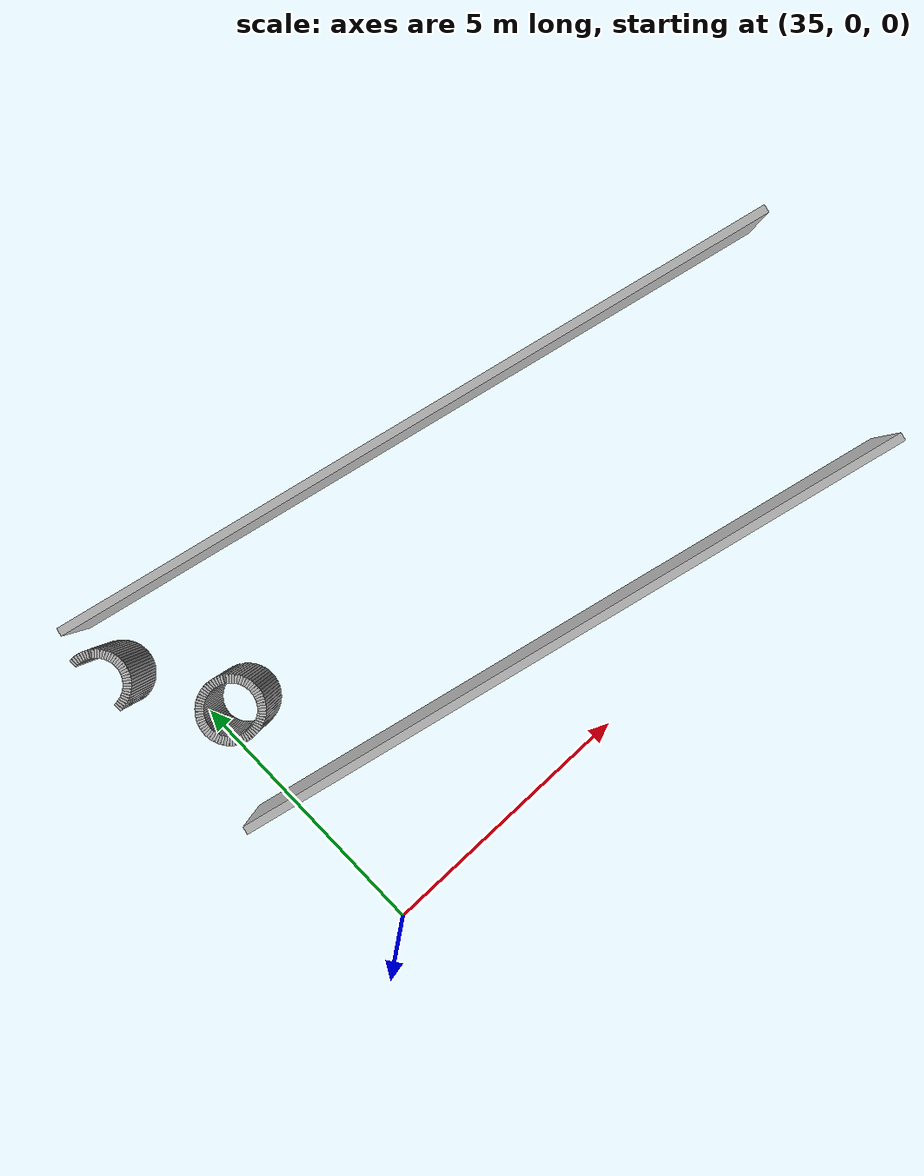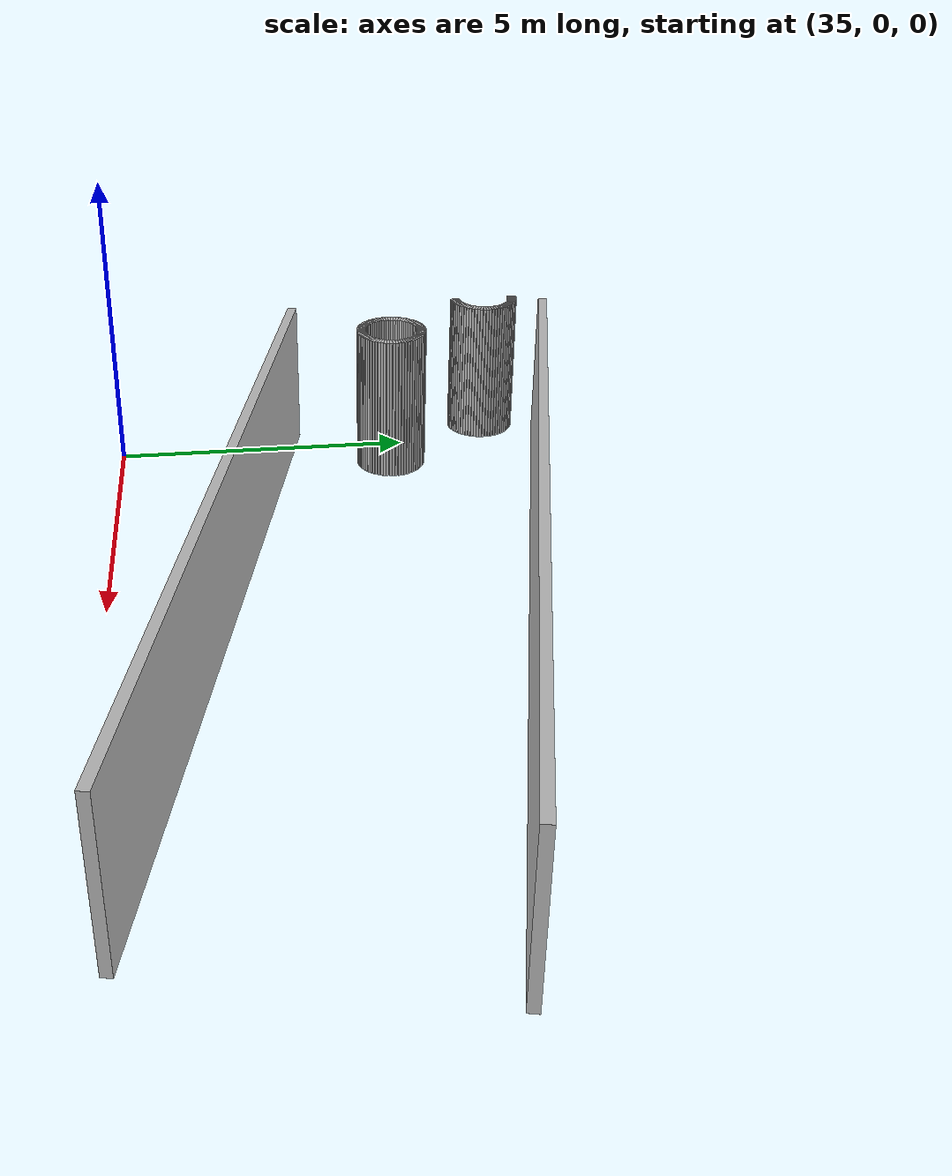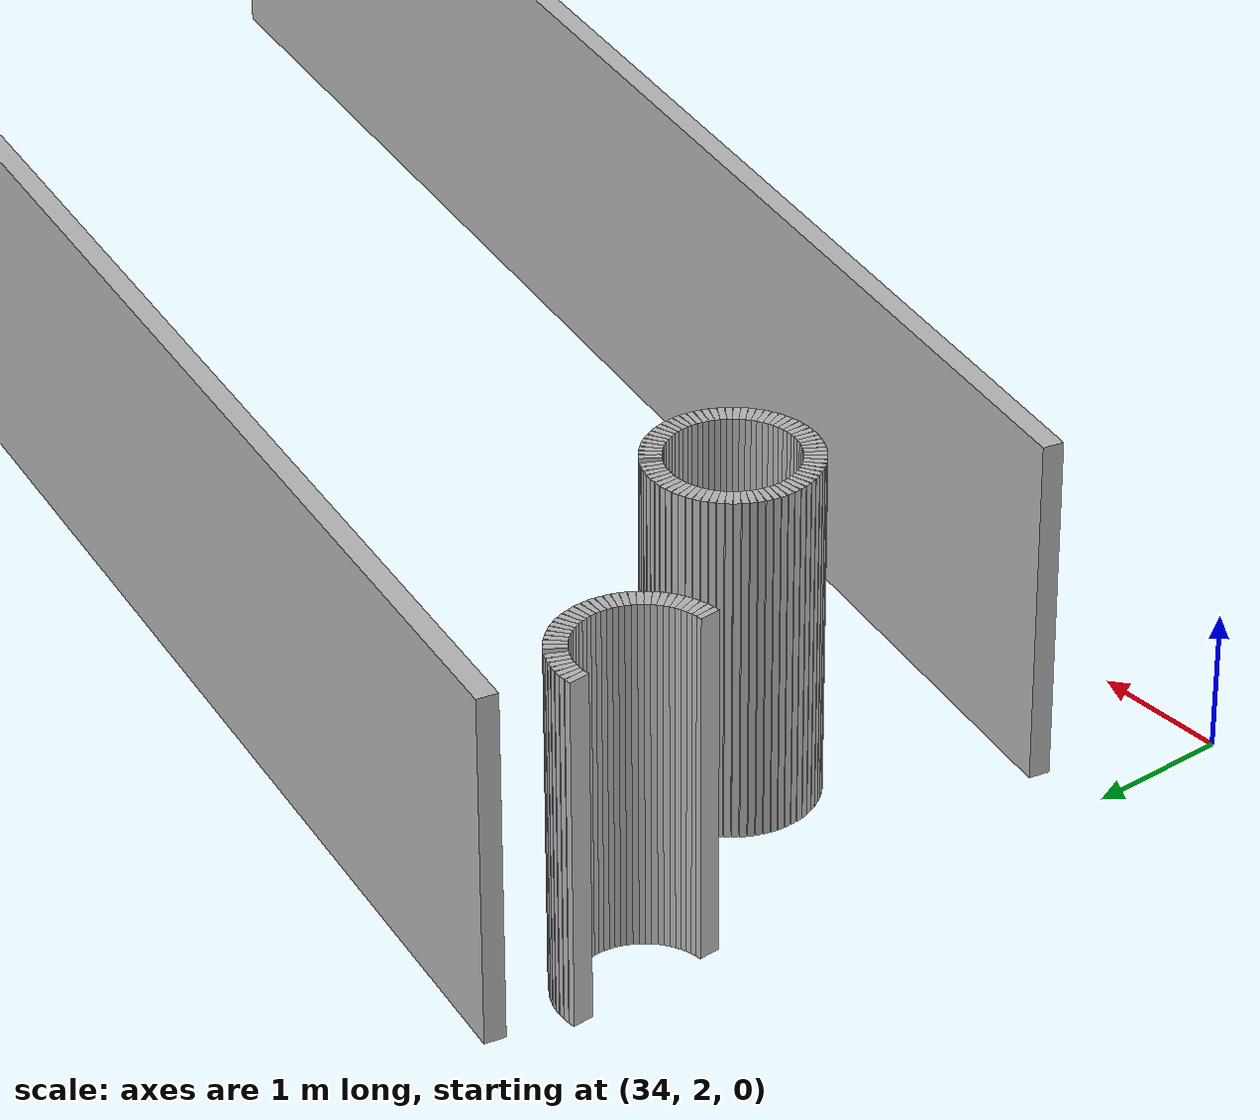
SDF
<sdf version="1.6">
 <model name="sps_2105">
  <static>1</static>
  <allow_auto_disable>0</allow_auto_disable>
  <link name="Wall360">
   <collision name="collision"><geometry><box><size>12.6978 0.15 2.5</size></box></geometry></collision>
   <visual name="visual">
    <geometry><box><size>12.6978 0.15 2.5</size></box></geometry>
    <transparency>0.0</transparency>
   </visual>
   <pose>40.6731 1.7684 1.25 0 -0 2.9273</pose>
  </link>
  <link name="Wall540">
   <collision name="collision"><geometry><box><size>13.6549 0.15 2.5</size></box></geometry></collision>
   <visual name="visual">
    <geometry><box><size>13.6549 0.15 2.5</size></box></geometry>
    <transparency>0.0</transparency>
   </visual>
   <pose>41.1407 6.16955 1.25 0 -0 2.9273</pose>
  </link>
  <link name="Wall907">
   <collision name="collision"><geometry><box><size>0.0453637 0.15 2.5</size></box></geometry></collision>
   <visual name="visual">
    <geometry><box><size>0.0453637 0.15 2.5</size></box></geometry>
    <transparency>0.0</transparency>
   </visual>
   <pose>35.9802 5.15571 1.25 0 0 -0.653727</pose>
  </link>
  <link name="Wall908">
   <collision name="collision"><geometry><box><size>0.0453148 0.15 2.5</size></box></geometry></collision>
   <visual name="visual">
    <geometry><box><size>0.0453148 0.15 2.5</size></box></geometry>
    <transparency>0.0</transparency>
   </visual>
   <pose>36.0149 5.1266 1.25 0 0 -0.742526</pose>
  </link>
  <link name="Wall909">
   <collision name="collision"><geometry><box><size>0.0454498 0.15 2.5</size></box></geometry></collision>
   <visual name="visual">
    <geometry><box><size>0.0454498 0.15 2.5</size></box></geometry>
    <transparency>0.0</transparency>
   </visual>
   <pose>36.047 5.0945 1.25 0 0 -0.830994</pose>
  </link>
  <link name="Wall910">
   <collision name="collision"><geometry><box><size>0.0453637 0.15 2.5</size></box></geometry></collision>
   <visual name="visual">
    <geometry><box><size>0.0453637 0.15 2.5</size></box></geometry>
    <transparency>0.0</transparency>
   </visual>
   <pose>36.0761 5.05971 1.25 0 0 -0.91707</pose>
  </link>
  <link name="Wall911">
   <collision name="collision"><geometry><box><size>0.045342 0.15 2.5</size></box></geometry></collision>
   <visual name="visual">
    <geometry><box><size>0.045342 0.15 2.5</size></box></geometry>
    <transparency>0.0</transparency>
   </visual>
   <pose>36.1021 5.0226 1.25 0 0 -1.00221</pose>
  </link>
  <link name="Wall912">
   <collision name="collision"><geometry><box><size>0.0453724 0.15 2.5</size></box></geometry></collision>
   <visual name="visual">
    <geometry><box><size>0.0453724 0.15 2.5</size></box></geometry>
    <transparency>0.0</transparency>
   </visual>
   <pose>36.1248 4.98338 1.25 0 0 -1.0897</pose>
  </link>
  <link name="Wall913">
   <collision name="collision"><geometry><box><size>0.0454525 0.15 2.5</size></box></geometry></collision>
   <visual name="visual">
    <geometry><box><size>0.0454525 0.15 2.5</size></box></geometry>
    <transparency>0.0</transparency>
   </visual>
   <pose>36.144 4.94227 1.25 0 0 -1.17807</pose>
  </link>
  <link name="Wall914">
   <collision name="collision"><geometry><box><size>0.0453057 0.15 2.5</size></box></geometry></collision>
   <visual name="visual">
    <geometry><box><size>0.0453057 0.15 2.5</size></box></geometry>
    <transparency>0.0</transparency>
   </visual>
   <pose>36.1595 4.89967 1.25 0 0 -1.26566</pose>
  </link>
  <link name="Wall915">
   <collision name="collision"><geometry><box><size>0.0452557 0.15 2.5</size></box></geometry></collision>
   <visual name="visual">
    <geometry><box><size>0.0452557 0.15 2.5</size></box></geometry>
    <transparency>0.0</transparency>
   </visual>
   <pose>36.1712 4.85597 1.25 0 0 -1.3533</pose>
  </link>
  <link name="Wall916">
   <collision name="collision"><geometry><box><size>0.0453551 0.15 2.5</size></box></geometry></collision>
   <visual name="visual">
    <geometry><box><size>0.0453551 0.15 2.5</size></box></geometry>
    <transparency>0.0</transparency>
   </visual>
   <pose>36.1789 4.81139 1.25 0 0 -1.4426</pose>
  </link>
  <link name="Wall917">
   <collision name="collision"><geometry><box><size>0.0454548 0.15 2.5</size></box></geometry></collision>
   <visual name="visual">
    <geometry><box><size>0.0454548 0.15 2.5</size></box></geometry>
    <transparency>0.0</transparency>
   </visual>
   <pose>36.1829 4.76619 1.25 0 0 -1.52647</pose>
  </link>
  <link name="Wall918">
   <collision name="collision"><geometry><box><size>0.0454548 0.15 2.5</size></box></geometry></collision>
   <visual name="visual">
    <geometry><box><size>0.0454548 0.15 2.5</size></box></geometry>
    <transparency>0.0</transparency>
   </visual>
   <pose>36.1829 4.72078 1.25 0 0 -1.61512</pose>
  </link>
  <link name="Wall919">
   <collision name="collision"><geometry><box><size>0.0451735 0.15 2.5</size></box></geometry></collision>
   <visual name="visual">
    <geometry><box><size>0.0451735 0.15 2.5</size></box></geometry>
    <transparency>0.0</transparency>
   </visual>
   <pose>36.1789 4.67567 1.25 0 0 -1.69951</pose>
  </link>
  <link name="Wall920">
   <collision name="collision"><geometry><box><size>0.0454876 0.15 2.5</size></box></geometry></collision>
   <visual name="visual">
    <geometry><box><size>0.0454876 0.15 2.5</size></box></geometry>
    <transparency>0.0</transparency>
   </visual>
   <pose>36.171 4.63109 1.25 0 0 -1.79267</pose>
  </link>
  <link name="Wall921">
   <collision name="collision"><geometry><box><size>0.0453057 0.15 2.5</size></box></geometry></collision>
   <visual name="visual">
    <geometry><box><size>0.0453057 0.15 2.5</size></box></geometry>
    <transparency>0.0</transparency>
   </visual>
   <pose>36.1592 4.58729 1.25 0 0 -1.87593</pose>
  </link>
  <link name="Wall922">
   <collision name="collision"><geometry><box><size>0.0454525 0.15 2.5</size></box></geometry></collision>
   <visual name="visual">
    <geometry><box><size>0.0454525 0.15 2.5</size></box></geometry>
    <transparency>0.0</transparency>
   </visual>
   <pose>36.1437 4.54469 1.25 0 0 -1.96352</pose>
  </link>
  <link name="Wall923">
   <collision name="collision"><geometry><box><size>0.0453724 0.15 2.5</size></box></geometry></collision>
   <visual name="visual">
    <geometry><box><size>0.0453724 0.15 2.5</size></box></geometry>
    <transparency>0.0</transparency>
   </visual>
   <pose>36.1245 4.50358 1.25 0 0 -2.05189</pose>
  </link>
  <link name="Wall924">
   <collision name="collision"><geometry><box><size>0.0453092 0.15 2.5</size></box></geometry></collision>
   <visual name="visual">
    <geometry><box><size>0.0453092 0.15 2.5</size></box></geometry>
    <transparency>0.0</transparency>
   </visual>
   <pose>36.1019 4.46437 1.25 0 0 -2.13825</pose>
  </link>
  <link name="Wall925">
   <collision name="collision"><geometry><box><size>0.0453524 0.15 2.5</size></box></geometry></collision>
   <visual name="visual">
    <geometry><box><size>0.0453524 0.15 2.5</size></box></geometry>
    <transparency>0.0</transparency>
   </visual>
   <pose>36.0759 4.42729 1.25 0 0 -2.22641</pose>
  </link>
  <link name="Wall926">
   <collision name="collision"><geometry><box><size>0.0453186 0.15 2.5</size></box></geometry></collision>
   <visual name="visual">
    <geometry><box><size>0.0453186 0.15 2.5</size></box></geometry>
    <transparency>0.0</transparency>
   </visual>
   <pose>36.0467 4.39259 1.25 0 0 -2.31142</pose>
  </link>
  <link name="Wall927">
   <collision name="collision"><geometry><box><size>0.0453974 0.15 2.5</size></box></geometry></collision>
   <visual name="visual">
    <geometry><box><size>0.0453974 0.15 2.5</size></box></geometry>
    <transparency>0.0</transparency>
   </visual>
   <pose>36.0148 4.36049 1.25 0 0 -2.39709</pose>
  </link>
  <link name="Wall928">
   <collision name="collision"><geometry><box><size>0.0453637 0.15 2.5</size></box></geometry></collision>
   <visual name="visual">
    <geometry><box><size>0.0453637 0.15 2.5</size></box></geometry>
    <transparency>0.0</transparency>
   </visual>
   <pose>35.9801 4.33131 1.25 0 0 -2.48787</pose>
  </link>
  <link name="Wall929">
   <collision name="collision"><geometry><box><size>0.0452437 0.15 2.5</size></box></geometry></collision>
   <visual name="visual">
    <geometry><box><size>0.0452437 0.15 2.5</size></box></geometry>
    <transparency>0.0</transparency>
   </visual>
   <pose>35.943 4.3054 1.25 0 0 -2.57642</pose>
  </link>
  <link name="Wall930">
   <collision name="collision"><geometry><box><size>0.0455348 0.15 2.5</size></box></geometry></collision>
   <visual name="visual">
    <geometry><box><size>0.0455348 0.15 2.5</size></box></geometry>
    <transparency>0.0</transparency>
   </visual>
   <pose>35.9036 4.28279 1.25 0 0 -2.66236</pose>
  </link>
  <link name="Wall931">
   <collision name="collision"><geometry><box><size>0.0452834 0.15 2.5</size></box></geometry></collision>
   <visual name="visual">
    <geometry><box><size>0.0452834 0.15 2.5</size></box></geometry>
    <transparency>0.0</transparency>
   </visual>
   <pose>35.8625 4.26359 1.25 0 0 -2.74732</pose>
  </link>
  <link name="Wall932">
   <collision name="collision"><geometry><box><size>0.0454804 0.15 2.5</size></box></geometry></collision>
   <visual name="visual">
    <geometry><box><size>0.0454804 0.15 2.5</size></box></geometry>
    <transparency>0.0</transparency>
   </visual>
   <pose>35.8199 4.24809 1.25 0 0 -2.83767</pose>
  </link>
  <link name="Wall933">
   <collision name="collision"><geometry><box><size>0.0452557 0.15 2.5</size></box></geometry></collision>
   <visual name="visual">
    <geometry><box><size>0.0452557 0.15 2.5</size></box></geometry>
    <transparency>0.0</transparency>
   </visual>
   <pose>35.7761 4.2364 1.25 0 0 -2.92409</pose>
  </link>
  <link name="Wall934">
   <collision name="collision"><geometry><box><size>0.0453869 0.15 2.5</size></box></geometry></collision>
   <visual name="visual">
    <geometry><box><size>0.0453869 0.15 2.5</size></box></geometry>
    <transparency>0.0</transparency>
   </visual>
   <pose>35.7316 4.2285 1.25 0 0 -3.00806</pose>
  </link>
  <link name="Wall935">
   <collision name="collision"><geometry><box><size>0.0454446 0.15 2.5</size></box></geometry></collision>
   <visual name="visual">
    <geometry><box><size>0.0454446 0.15 2.5</size></box></geometry>
    <transparency>0.0</transparency>
   </visual>
   <pose>35.6864 4.22459 1.25 0 0 -3.10263</pose>
  </link>
  <link name="Wall936">
   <collision name="collision"><geometry><box><size>0.0452617 0.15 2.5</size></box></geometry></collision>
   <visual name="visual">
    <geometry><box><size>0.0452617 0.15 2.5</size></box></geometry>
    <transparency>0.0</transparency>
   </visual>
   <pose>35.641 4.22459 1.25 0 -0 3.10248</pose>
  </link>
  <link name="Wall937">
   <collision name="collision"><geometry><box><size>0.0453869 0.15 2.5</size></box></geometry></collision>
   <visual name="visual">
    <geometry><box><size>0.0453869 0.15 2.5</size></box></geometry>
    <transparency>0.0</transparency>
   </visual>
   <pose>35.5959 4.2285 1.25 0 -0 3.00806</pose>
  </link>
  <link name="Wall938">
   <collision name="collision"><geometry><box><size>0.0454742 0.15 2.5</size></box></geometry></collision>
   <visual name="visual">
    <geometry><box><size>0.0454742 0.15 2.5</size></box></geometry>
    <transparency>0.0</transparency>
   </visual>
   <pose>35.5513 4.23649 1.25 0 -0 2.92103</pose>
  </link>
  <link name="Wall939">
   <collision name="collision"><geometry><box><size>0.0453057 0.15 2.5</size></box></geometry></collision>
   <visual name="visual">
    <geometry><box><size>0.0453057 0.15 2.5</size></box></geometry>
    <transparency>0.0</transparency>
   </visual>
   <pose>35.5075 4.24827 1.25 0 -0 2.83646</pose>
  </link>
  <link name="Wall940">
   <collision name="collision"><geometry><box><size>0.0452834 0.15 2.5</size></box></geometry></collision>
   <visual name="visual">
    <geometry><box><size>0.0452834 0.15 2.5</size></box></geometry>
    <transparency>0.0</transparency>
   </visual>
   <pose>35.465 4.26378 1.25 0 -0 2.74732</pose>
  </link>
  <link name="Wall941">
   <collision name="collision"><geometry><box><size>0.045288 0.15 2.5</size></box></geometry></collision>
   <visual name="visual">
    <geometry><box><size>0.045288 0.15 2.5</size></box></geometry>
    <transparency>0.0</transparency>
   </visual>
   <pose>35.4239 4.28288 1.25 0 -0 2.66408</pose>
  </link>
  <link name="Wall942">
   <collision name="collision"><geometry><box><size>0.0454964 0.15 2.5</size></box></geometry></collision>
   <visual name="visual">
    <geometry><box><size>0.0454964 0.15 2.5</size></box></geometry>
    <transparency>0.0</transparency>
   </visual>
   <pose>35.3846 4.3055 1.25 0 -0 2.57517</pose>
  </link>
  <link name="Wall943">
   <collision name="collision"><geometry><box><size>0.0454753 0.15 2.5</size></box></geometry></collision>
   <visual name="visual">
    <geometry><box><size>0.0454753 0.15 2.5</size></box></geometry>
    <transparency>0.0</transparency>
   </visual>
   <pose>35.3474 4.33159 1.25 0 -0 2.48467</pose>
  </link>
  <link name="Wall944">
   <collision name="collision"><geometry><box><size>0.0453148 0.15 2.5</size></box></geometry></collision>
   <visual name="visual">
    <geometry><box><size>0.0453148 0.15 2.5</size></box></geometry>
    <transparency>0.0</transparency>
   </visual>
   <pose>35.3127 4.36079 1.25 0 -0 2.39907</pose>
  </link>
  <link name="Wall945">
   <collision name="collision"><geometry><box><size>0.0452735 0.15 2.5</size></box></geometry></collision>
   <visual name="visual">
    <geometry><box><size>0.0452735 0.15 2.5</size></box></geometry>
    <transparency>0.0</transparency>
   </visual>
   <pose>35.2808 4.39281 1.25 0 -0 2.31233</pose>
  </link>
  <link name="Wall946">
   <collision name="collision"><geometry><box><size>0.0453637 0.15 2.5</size></box></geometry></collision>
   <visual name="visual">
    <geometry><box><size>0.0453637 0.15 2.5</size></box></geometry>
    <transparency>0.0</transparency>
   </visual>
   <pose>35.2517 4.4275 1.25 0 -0 2.22452</pose>
  </link>
  <link name="Wall947">
   <collision name="collision"><geometry><box><size>0.045342 0.15 2.5</size></box></geometry></collision>
   <visual name="visual">
    <geometry><box><size>0.045342 0.15 2.5</size></box></geometry>
    <transparency>0.0</transparency>
   </visual>
   <pose>35.2257 4.46461 1.25 0 -0 2.13938</pose>
  </link>
  <link name="Wall948">
   <collision name="collision"><geometry><box><size>0.0453183 0.15 2.5</size></box></geometry></collision>
   <visual name="visual">
    <geometry><box><size>0.0453183 0.15 2.5</size></box></geometry>
    <transparency>0.0</transparency>
   </visual>
   <pose>35.203 4.5038 1.25 0 -0 2.05251</pose>
  </link>
  <link name="Wall949">
   <collision name="collision"><geometry><box><size>0.0453827 0.15 2.5</size></box></geometry></collision>
   <visual name="visual">
    <geometry><box><size>0.0453827 0.15 2.5</size></box></geometry>
    <transparency>0.0</transparency>
   </visual>
   <pose>35.1839 4.54488 1.25 0 -0 1.95979</pose>
  </link>
  <link name="Wall950">
   <collision name="collision"><geometry><box><size>0.0454804 0.15 2.5</size></box></geometry></collision>
   <visual name="visual">
    <geometry><box><size>0.0454804 0.15 2.5</size></box></geometry>
    <transparency>0.0</transparency>
   </visual>
   <pose>35.1684 4.58757 1.25 0 -0 1.87472</pose>
  </link>
  <link name="Wall951">
   <collision name="collision"><geometry><box><size>0.0453685 0.15 2.5</size></box></geometry></collision>
   <visual name="visual">
    <geometry><box><size>0.0453685 0.15 2.5</size></box></geometry>
    <transparency>0.0</transparency>
   </visual>
   <pose>35.1566 4.63139 1.25 0 -0 1.79326</pose>
  </link>
  <link name="Wall952">
   <collision name="collision"><geometry><box><size>0.0453551 0.15 2.5</size></box></geometry></collision>
   <visual name="visual">
    <geometry><box><size>0.0453551 0.15 2.5</size></box></geometry>
    <transparency>0.0</transparency>
   </visual>
   <pose>35.1487 4.67601 1.25 0 -0 1.69899</pose>
  </link>
  <link name="Wall953">
   <collision name="collision"><geometry><box><size>0.0452082 0.15 2.5</size></box></geometry></collision>
   <visual name="visual">
    <geometry><box><size>0.0452082 0.15 2.5</size></box></geometry>
    <transparency>0.0</transparency>
   </visual>
   <pose>35.1449 4.72108 1.25 0 -0 1.61401</pose>
  </link>
  <link name="Wall954">
   <collision name="collision"><geometry><box><size>0.0454521 0.15 2.5</size></box></geometry></collision>
   <visual name="visual">
    <geometry><box><size>0.0454521 0.15 2.5</size></box></geometry>
    <transparency>0.0</transparency>
   </visual>
   <pose>35.1449 4.76637 1.25 0 -0 1.52781</pose>
  </link>
  <link name="Wall955">
   <collision name="collision"><geometry><box><size>0.0454474 0.15 2.5</size></box></geometry></collision>
   <visual name="visual">
    <geometry><box><size>0.0454474 0.15 2.5</size></box></geometry>
    <transparency>0.0</transparency>
   </visual>
   <pose>35.1489 4.8116 1.25 0 -0 1.43745</pose>
  </link>
  <link name="Wall956">
   <collision name="collision"><geometry><box><size>0.0452557 0.15 2.5</size></box></geometry></collision>
   <visual name="visual">
    <geometry><box><size>0.0452557 0.15 2.5</size></box></geometry>
    <transparency>0.0</transparency>
   </visual>
   <pose>35.1568 4.85622 1.25 0 -0 1.3533</pose>
  </link>
  <link name="Wall957">
   <collision name="collision"><geometry><box><size>0.0454804 0.15 2.5</size></box></geometry></collision>
   <visual name="visual">
    <geometry><box><size>0.0454804 0.15 2.5</size></box></geometry>
    <transparency>0.0</transparency>
   </visual>
   <pose>35.1684 4.90001 1.25 0 -0 1.26687</pose>
  </link>
  <link name="Wall958">
   <collision name="collision"><geometry><box><size>0.0452834 0.15 2.5</size></box></geometry></collision>
   <visual name="visual">
    <geometry><box><size>0.0452834 0.15 2.5</size></box></geometry>
    <transparency>0.0</transparency>
   </visual>
   <pose>35.184 4.94261 1.25 0 -0 1.17652</pose>
  </link>
  <link name="Wall959">
   <collision name="collision"><geometry><box><size>0.0453183 0.15 2.5</size></box></geometry></collision>
   <visual name="visual">
    <geometry><box><size>0.0453183 0.15 2.5</size></box></geometry>
    <transparency>0.0</transparency>
   </visual>
   <pose>35.2031 4.9836 1.25 0 -0 1.08908</pose>
  </link>
  <link name="Wall960">
   <collision name="collision"><geometry><box><size>0.0454964 0.15 2.5</size></box></geometry></collision>
   <visual name="visual">
    <geometry><box><size>0.0454964 0.15 2.5</size></box></geometry>
    <transparency>0.0</transparency>
   </visual>
   <pose>35.2259 5.02287 1.25 0 -0 1.00438</pose>
  </link>
  <link name="Wall961">
   <collision name="collision"><geometry><box><size>0.0453637 0.15 2.5</size></box></geometry></collision>
   <visual name="visual">
    <geometry><box><size>0.0453637 0.15 2.5</size></box></geometry>
    <transparency>0.0</transparency>
   </visual>
   <pose>35.2519 5.06007 1.25 0 -0 0.91707</pose>
  </link>
  <link name="Wall962">
   <collision name="collision"><geometry><box><size>0.0452735 0.15 2.5</size></box></geometry></collision>
   <visual name="visual">
    <geometry><box><size>0.0452735 0.15 2.5</size></box></geometry>
    <transparency>0.0</transparency>
   </visual>
   <pose>35.2809 5.09477 1.25 0 -0 0.829263</pose>
  </link>
  <link name="Wall963">
   <collision name="collision"><geometry><box><size>0.0453598 0.15 2.5</size></box></geometry></collision>
   <visual name="visual">
    <geometry><box><size>0.0453598 0.15 2.5</size></box></geometry>
    <transparency>0.0</transparency>
   </visual>
   <pose>35.3129 5.12678 1.25 0 -0 0.741617</pose>
  </link>
  <link name="Wall964">
   <collision name="collision"><geometry><box><size>0.0453637 0.15 2.5</size></box></geometry></collision>
   <visual name="visual">
    <geometry><box><size>0.0453637 0.15 2.5</size></box></geometry>
    <transparency>0.0</transparency>
   </visual>
   <pose>35.3477 5.1559 1.25 0 -0 0.653727</pose>
  </link>
  <link name="Wall965">
   <collision name="collision"><geometry><box><size>0.0454964 0.15 2.5</size></box></geometry></collision>
   <visual name="visual">
    <geometry><box><size>0.0454964 0.15 2.5</size></box></geometry>
    <transparency>0.0</transparency>
   </visual>
   <pose>35.3849 5.1819 1.25 0 -0 0.566421</pose>
  </link>
  <link name="Wall966">
   <collision name="collision"><geometry><box><size>0.0452338 0.15 2.5</size></box></geometry></collision>
   <visual name="visual">
    <geometry><box><size>0.0452338 0.15 2.5</size></box></geometry>
    <transparency>0.0</transparency>
   </visual>
   <pose>35.4242 5.20451 1.25 0 -0 0.478131</pose>
  </link>
  <link name="Wall967">
   <collision name="collision"><geometry><box><size>0.0454525 0.15 2.5</size></box></geometry></collision>
   <visual name="visual">
    <geometry><box><size>0.0454525 0.15 2.5</size></box></geometry>
    <transparency>0.0</transparency>
   </visual>
   <pose>35.4652 5.22362 1.25 0 -0 0.392725</pose>
  </link>
  <link name="Wall968">
   <collision name="collision"><geometry><box><size>0.0452874 0.15 2.5</size></box></geometry></collision>
   <visual name="visual">
    <geometry><box><size>0.0452874 0.15 2.5</size></box></geometry>
    <transparency>0.0</transparency>
   </visual>
   <pose>35.5078 5.23909 1.25 0 -0 0.30385</pose>
  </link>
  <link name="Wall969">
   <collision name="collision"><geometry><box><size>0.0452689 0.15 2.5</size></box></geometry></collision>
   <visual name="visual">
    <geometry><box><size>0.0452689 0.15 2.5</size></box></geometry>
    <transparency>0.0</transparency>
   </visual>
   <pose>35.5515 5.25078 1.25 0 -0 0.218815</pose>
  </link>
  <link name="Wall970">
   <collision name="collision"><geometry><box><size>0.0454394 0.15 2.5</size></box></geometry></collision>
   <visual name="visual">
    <geometry><box><size>0.0454394 0.15 2.5</size></box></geometry>
    <transparency>0.0</transparency>
   </visual>
   <pose>35.5962 5.25868 1.25 0 -0 0.132019</pose>
  </link>
  <link name="Wall971">
   <collision name="collision"><geometry><box><size>0.0454548 0.15 2.5</size></box></geometry></collision>
   <visual name="visual">
    <geometry><box><size>0.0454548 0.15 2.5</size></box></geometry>
    <transparency>0.0</transparency>
   </visual>
   <pose>35.6414 5.26268 1.25 0 -0 0.0443258</pose>
  </link>
  <link name="Wall972">
   <collision name="collision"><geometry><box><size>0.0453938 0.15 2.5</size></box></geometry></collision>
   <visual name="visual">
    <geometry><box><size>0.0453938 0.15 2.5</size></box></geometry>
    <transparency>0.0</transparency>
   </visual>
   <pose>35.6868 5.26268 1.25 0 0 -0.0443854</pose>
  </link>
  <link name="Wall973">
   <collision name="collision"><geometry><box><size>0.0451973 0.15 2.5</size></box></geometry></collision>
   <visual name="visual">
    <geometry><box><size>0.0451973 0.15 2.5</size></box></geometry>
    <transparency>0.0</transparency>
   </visual>
   <pose>35.7318 5.25868 1.25 0 0 -0.13273</pose>
  </link>
  <link name="Wall974">
   <collision name="collision"><geometry><box><size>0.0455072 0.15 2.5</size></box></geometry></collision>
   <visual name="visual">
    <geometry><box><size>0.0455072 0.15 2.5</size></box></geometry>
    <transparency>0.0</transparency>
   </visual>
   <pose>35.7765 5.25078 1.25 0 0 -0.217651</pose>
  </link>
  <link name="Wall975">
   <collision name="collision"><geometry><box><size>0.0452874 0.15 2.5</size></box></geometry></collision>
   <visual name="visual">
    <geometry><box><size>0.0452874 0.15 2.5</size></box></geometry>
    <transparency>0.0</transparency>
   </visual>
   <pose>35.8203 5.23909 1.25 0 0 -0.30385</pose>
  </link>
  <link name="Wall976">
   <collision name="collision"><geometry><box><size>0.0454525 0.15 2.5</size></box></geometry></collision>
   <visual name="visual">
    <geometry><box><size>0.0454525 0.15 2.5</size></box></geometry>
    <transparency>0.0</transparency>
   </visual>
   <pose>35.8629 5.22362 1.25 0 0 -0.392725</pose>
  </link>
  <link name="Wall977">
   <collision name="collision"><geometry><box><size>0.0453183 0.15 2.5</size></box></geometry></collision>
   <visual name="visual">
    <geometry><box><size>0.0453183 0.15 2.5</size></box></geometry>
    <transparency>0.0</transparency>
   </visual>
   <pose>35.904 5.20442 1.25 0 0 -0.481718</pose>
  </link>
  <link name="Wall1487">
   <collision name="collision"><geometry><box><size>0.0455462 0.15 2.5</size></box></geometry></collision>
   <visual name="visual">
    <geometry><box><size>0.0455462 0.15 2.5</size></box></geometry>
    <transparency>0.0</transparency>
   </visual>
   <pose>34.6379 6.98289 1.25 0 0 -0.652346</pose>
  </link>
  <link name="Wall1488">
   <collision name="collision"><geometry><box><size>0.0453186 0.15 2.5</size></box></geometry></collision>
   <visual name="visual">
    <geometry><box><size>0.0453186 0.15 2.5</size></box></geometry>
    <transparency>0.0</transparency>
   </visual>
   <pose>34.6728 6.95378 1.25 0 0 -0.740624</pose>
  </link>
  <link name="Wall1489">
   <collision name="collision"><geometry><box><size>0.0454087 0.15 2.5</size></box></geometry></collision>
   <visual name="visual">
    <geometry><box><size>0.0454087 0.15 2.5</size></box></geometry>
    <transparency>0.0</transparency>
   </visual>
   <pose>34.7048 6.92171 1.25 0 0 -0.831987</pose>
  </link>
  <link name="Wall1490">
   <collision name="collision"><geometry><box><size>0.0453637 0.15 2.5</size></box></geometry></collision>
   <visual name="visual">
    <geometry><box><size>0.0453637 0.15 2.5</size></box></geometry>
    <transparency>0.0</transparency>
   </visual>
   <pose>34.7338 6.88692 1.25 0 0 -0.91707</pose>
  </link>
  <link name="Wall1491">
   <collision name="collision"><geometry><box><size>0.045342 0.15 2.5</size></box></geometry></collision>
   <visual name="visual">
    <geometry><box><size>0.045342 0.15 2.5</size></box></geometry>
    <transparency>0.0</transparency>
   </visual>
   <pose>34.7598 6.84981 1.25 0 0 -1.00221</pose>
  </link>
  <link name="Wall1492">
   <collision name="collision"><geometry><box><size>0.045288 0.15 2.5</size></box></geometry></collision>
   <visual name="visual">
    <geometry><box><size>0.045288 0.15 2.5</size></box></geometry>
    <transparency>0.0</transparency>
   </visual>
   <pose>34.7825 6.81059 1.25 0 0 -1.09329</pose>
  </link>
  <link name="Wall1493">
   <collision name="collision"><geometry><box><size>0.0454525 0.15 2.5</size></box></geometry></collision>
   <visual name="visual">
    <geometry><box><size>0.0454525 0.15 2.5</size></box></geometry>
    <transparency>0.0</transparency>
   </visual>
   <pose>34.8016 6.76948 1.25 0 0 -1.17807</pose>
  </link>
  <link name="Wall1494">
   <collision name="collision"><geometry><box><size>0.0453057 0.15 2.5</size></box></geometry></collision>
   <visual name="visual">
    <geometry><box><size>0.0453057 0.15 2.5</size></box></geometry>
    <transparency>0.0</transparency>
   </visual>
   <pose>34.8171 6.72688 1.25 0 0 -1.26566</pose>
  </link>
  <link name="Wall1495">
   <collision name="collision"><geometry><box><size>0.0454345 0.15 2.5</size></box></geometry></collision>
   <visual name="visual">
    <geometry><box><size>0.0454345 0.15 2.5</size></box></geometry>
    <transparency>0.0</transparency>
   </visual>
   <pose>34.8288 6.68309 1.25 0 0 -1.35417</pose>
  </link>
  <link name="Wall1496">
   <collision name="collision"><geometry><box><size>0.0453869 0.15 2.5</size></box></geometry></collision>
   <visual name="visual">
    <geometry><box><size>0.0453869 0.15 2.5</size></box></geometry>
    <transparency>0.0</transparency>
   </visual>
   <pose>34.8367 6.63841 1.25 0 0 -1.43727</pose>
  </link>
  <link name="Wall1497">
   <collision name="collision"><geometry><box><size>0.0452692 0.15 2.5</size></box></geometry></collision>
   <visual name="visual">
    <geometry><box><size>0.0452692 0.15 2.5</size></box></geometry>
    <transparency>0.0</transparency>
   </visual>
   <pose>34.8407 6.59331 1.25 0 0 -1.52764</pose>
  </link>
  <link name="Wall1498">
   <collision name="collision"><geometry><box><size>0.0454521 0.15 2.5</size></box></geometry></collision>
   <visual name="visual">
    <geometry><box><size>0.0454521 0.15 2.5</size></box></geometry>
    <transparency>0.0</transparency>
   </visual>
   <pose>34.8407 6.54799 1.25 0 0 -1.61378</pose>
  </link>
  <link name="Wall1499">
   <collision name="collision"><geometry><box><size>0.0453869 0.15 2.5</size></box></geometry></collision>
   <visual name="visual">
    <geometry><box><size>0.0453869 0.15 2.5</size></box></geometry>
    <transparency>0.0</transparency>
   </visual>
   <pose>34.8367 6.50279 1.25 0 0 -1.70433</pose>
  </link>
  <link name="Wall1500">
   <collision name="collision"><geometry><box><size>0.0452557 0.15 2.5</size></box></geometry></collision>
   <visual name="visual">
    <geometry><box><size>0.0452557 0.15 2.5</size></box></geometry>
    <transparency>0.0</transparency>
   </visual>
   <pose>34.8288 6.45821 1.25 0 0 -1.78829</pose>
  </link>
  <link name="Wall1501">
   <collision name="collision"><geometry><box><size>0.0453057 0.15 2.5</size></box></geometry></collision>
   <visual name="visual">
    <geometry><box><size>0.0453057 0.15 2.5</size></box></geometry>
    <transparency>0.0</transparency>
   </visual>
   <pose>34.8171 6.4145 1.25 0 0 -1.87593</pose>
  </link>
  <link name="Wall1502">
   <collision name="collision"><geometry><box><size>0.0454525 0.15 2.5</size></box></geometry></collision>
   <visual name="visual">
    <geometry><box><size>0.0454525 0.15 2.5</size></box></geometry>
    <transparency>0.0</transparency>
   </visual>
   <pose>34.8016 6.3719 1.25 0 0 -1.96352</pose>
  </link>
  <link name="Wall1503">
   <collision name="collision"><geometry><box><size>0.0453724 0.15 2.5</size></box></geometry></collision>
   <visual name="visual">
    <geometry><box><size>0.0453724 0.15 2.5</size></box></geometry>
    <transparency>0.0</transparency>
   </visual>
   <pose>34.7824 6.33079 1.25 0 0 -2.05189</pose>
  </link>
  <link name="Wall1504">
   <collision name="collision"><geometry><box><size>0.045342 0.15 2.5</size></box></geometry></collision>
   <visual name="visual">
    <geometry><box><size>0.045342 0.15 2.5</size></box></geometry>
    <transparency>0.0</transparency>
   </visual>
   <pose>34.7597 6.29158 1.25 0 0 -2.13938</pose>
  </link>
  <link name="Wall1505">
   <collision name="collision"><geometry><box><size>0.0453637 0.15 2.5</size></box></geometry></collision>
   <visual name="visual">
    <geometry><box><size>0.0453637 0.15 2.5</size></box></geometry>
    <transparency>0.0</transparency>
   </visual>
   <pose>34.7337 6.25447 1.25 0 0 -2.22452</pose>
  </link>
  <link name="Wall1506">
   <collision name="collision"><geometry><box><size>0.0453148 0.15 2.5</size></box></geometry></collision>
   <visual name="visual">
    <geometry><box><size>0.0453148 0.15 2.5</size></box></geometry>
    <transparency>0.0</transparency>
   </visual>
   <pose>34.7046 6.21977 1.25 0 0 -2.31332</pose>
  </link>
  <link name="Wall1507">
   <collision name="collision"><geometry><box><size>0.0455322 0.15 2.5</size></box></geometry></collision>
   <visual name="visual">
    <geometry><box><size>0.0455322 0.15 2.5</size></box></geometry>
    <transparency>0.0</transparency>
   </visual>
   <pose>34.6724 6.1877 1.25 0 0 -2.39981</pose>
  </link>
  <link name="Wall1508">
   <collision name="collision"><geometry><box><size>0.0454008 0.15 2.5</size></box></geometry></collision>
   <visual name="visual">
    <geometry><box><size>0.0454008 0.15 2.5</size></box></geometry>
    <transparency>0.0</transparency>
   </visual>
   <pose>34.6377 6.15849 1.25 0 0 -2.4868</pose>
  </link>
  <link name="Wall1509">
   <collision name="collision"><geometry><box><size>0.0453092 0.15 2.5</size></box></geometry></collision>
   <visual name="visual">
    <geometry><box><size>0.0453092 0.15 2.5</size></box></geometry>
    <transparency>0.0</transparency>
   </visual>
   <pose>34.6005 6.13249 1.25 0 0 -2.57414</pose>
  </link>
  <link name="Wall1510">
   <collision name="collision"><geometry><box><size>0.0452338 0.15 2.5</size></box></geometry></collision>
   <visual name="visual">
    <geometry><box><size>0.0452338 0.15 2.5</size></box></geometry>
    <transparency>0.0</transparency>
   </visual>
   <pose>34.5614 6.10991 1.25 0 0 -2.66346</pose>
  </link>
  <link name="Wall1511">
   <collision name="collision"><geometry><box><size>0.0455089 0.15 2.5</size></box></geometry></collision>
   <visual name="visual">
    <geometry><box><size>0.0455089 0.15 2.5</size></box></geometry>
    <transparency>0.0</transparency>
   </visual>
   <pose>34.5203 6.0908 1.25 0 0 -2.74938</pose>
  </link>
  <link name="Wall1512">
   <collision name="collision"><geometry><box><size>0.0452475 0.15 2.5</size></box></geometry></collision>
   <visual name="visual">
    <geometry><box><size>0.0452475 0.15 2.5</size></box></geometry>
    <transparency>0.0</transparency>
   </visual>
   <pose>34.4777 6.0753 1.25 0 0 -2.83605</pose>
  </link>
  <link name="Wall1513">
   <collision name="collision"><geometry><box><size>0.0455072 0.15 2.5</size></box></geometry></collision>
   <visual name="visual">
    <geometry><box><size>0.0455072 0.15 2.5</size></box></geometry>
    <transparency>0.0</transparency>
   </visual>
   <pose>34.4339 6.06358 1.25 0 0 -2.92394</pose>
  </link>
  <link name="Wall1514">
   <collision name="collision"><geometry><box><size>0.0451973 0.15 2.5</size></box></geometry></collision>
   <visual name="visual">
    <geometry><box><size>0.0451973 0.15 2.5</size></box></geometry>
    <transparency>0.0</transparency>
   </visual>
   <pose>34.3892 6.05568 1.25 0 0 -3.00886</pose>
  </link>
  <link name="Wall1515">
   <collision name="collision"><geometry><box><size>0.0454548 0.15 2.5</size></box></geometry></collision>
   <visual name="visual">
    <geometry><box><size>0.0454548 0.15 2.5</size></box></geometry>
    <transparency>0.0</transparency>
   </visual>
   <pose>34.3441 6.05168 1.25 0 0 -3.09727</pose>
  </link>
  <link name="Wall1551">
   <collision name="collision"><geometry><box><size>0.0452719 0.15 2.5</size></box></geometry></collision>
   <visual name="visual">
    <geometry><box><size>0.0452719 0.15 2.5</size></box></geometry>
    <transparency>0.0</transparency>
   </visual>
   <pose>34.2991 7.08989 1.25 0 -0 0.044505</pose>
  </link>
  <link name="Wall1552">
   <collision name="collision"><geometry><box><size>0.0453938 0.15 2.5</size></box></geometry></collision>
   <visual name="visual">
    <geometry><box><size>0.0453938 0.15 2.5</size></box></geometry>
    <transparency>0.0</transparency>
   </visual>
   <pose>34.3444 7.08989 1.25 0 0 -0.0443854</pose>
  </link>
  <link name="Wall1553">
   <collision name="collision"><geometry><box><size>0.0454394 0.15 2.5</size></box></geometry></collision>
   <visual name="visual">
    <geometry><box><size>0.0454394 0.15 2.5</size></box></geometry>
    <transparency>0.0</transparency>
   </visual>
   <pose>34.3895 7.08589 1.25 0 0 -0.132019</pose>
  </link>
  <link name="Wall1554">
   <collision name="collision"><geometry><box><size>0.0452689 0.15 2.5</size></box></geometry></collision>
   <visual name="visual">
    <geometry><box><size>0.0452689 0.15 2.5</size></box></geometry>
    <transparency>0.0</transparency>
   </visual>
   <pose>34.4342 7.07799 1.25 0 0 -0.218815</pose>
  </link>
  <link name="Wall1555">
   <collision name="collision"><geometry><box><size>0.0455355 0.15 2.5</size></box></geometry></collision>
   <visual name="visual">
    <geometry><box><size>0.0455355 0.15 2.5</size></box></geometry>
    <transparency>0.0</transparency>
   </visual>
   <pose>34.478 7.06618 1.25 0 0 -0.307763</pose>
  </link>
  <link name="Wall1556">
   <collision name="collision"><geometry><box><size>0.0452134 0.15 2.5</size></box></geometry></collision>
   <visual name="visual">
    <geometry><box><size>0.0452134 0.15 2.5</size></box></geometry>
    <transparency>0.0</transparency>
   </visual>
   <pose>34.5206 7.05067 1.25 0 0 -0.390534</pose>
  </link>
  <link name="Wall1557">
   <collision name="collision"><geometry><box><size>0.0453183 0.15 2.5</size></box></geometry></collision>
   <visual name="visual">
    <geometry><box><size>0.0453183 0.15 2.5</size></box></geometry>
    <transparency>0.0</transparency>
   </visual>
   <pose>34.5615 7.03157 1.25 0 0 -0.481718</pose>
  </link>
 </model>
</sdf>
